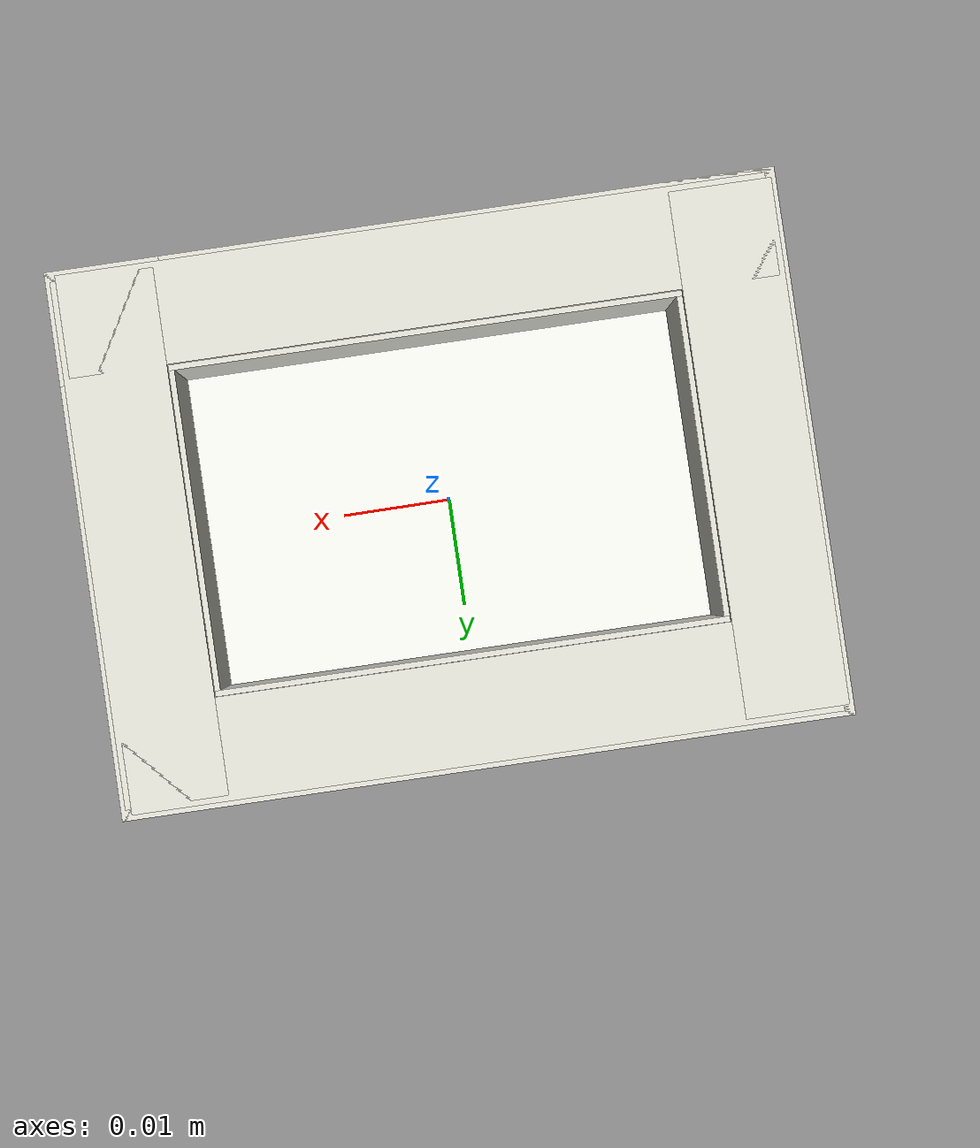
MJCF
<mujoco model="foam_board_small">
  <asset>
    <material name="foam_white" rgba="0.96 0.96 0.93 1" specular="0.05" shininess="0.04" />
    <material name="foam_edge" rgba="0.87 0.87 0.83 1" specular="0.04" shininess="0.03" />
  </asset>
  <worldbody>
    <body>
      <body name="object">
        <geom name="foam_small_collision" type="box" pos="0 0 0.006" size="0.032 0.024 0.006" material="foam_white" group="0" friction="1.0 0.3 0.1" />
        <geom name="foam_small_edge_right_collision" type="box" pos="0.027 0 0.020" size="0.005 0.024 0.007" material="foam_edge" group="0" friction="1.0 0.3 0.1" />
        <geom name="foam_small_edge_left_collision" type="box" pos="-0.027 0 0.020" size="0.005 0.024 0.007" material="foam_edge" group="0" friction="1.0 0.3 0.1" />
        <geom name="foam_small_edge_front_collision" type="box" pos="0 -0.019 0.020" size="0.032 0.005 0.007" material="foam_edge" group="0" friction="1.0 0.3 0.1" />
        <geom name="foam_small_edge_back_collision" type="box" pos="0 0.019 0.020" size="0.032 0.005 0.007" material="foam_edge" group="0" friction="1.0 0.3 0.1" />
        <geom name="foam_small_visual" type="box" pos="0 0 0.007" size="0.031 0.023 0.006" material="foam_white" group="1" contype="0" conaffinity="0" />
        <geom name="foam_small_edge_right_visual" type="box" pos="0.027 0 0.021" size="0.0045 0.023 0.007" material="foam_edge" group="1" contype="0" conaffinity="0" />
        <geom name="foam_small_edge_left_visual" type="box" pos="-0.027 0 0.021" size="0.0045 0.023 0.007" material="foam_edge" group="1" contype="0" conaffinity="0" />
        <geom name="foam_small_edge_front_visual" type="box" pos="0 -0.019 0.021" size="0.031 0.0045 0.007" material="foam_edge" group="1" contype="0" conaffinity="0" />
        <geom name="foam_small_edge_back_visual" type="box" pos="0 0.019 0.021" size="0.031 0.0045 0.007" material="foam_edge" group="1" contype="0" conaffinity="0" />
      </body>
      <site rgba="0 0 0 0" size="0.005" pos="0 0 -0.004" name="bottom_site" />
      <site rgba="0 0 0 0" size="0.005" pos="0 0 0.029" name="top_site" />
      <site rgba="0 0 0 0" size="0.032" pos="0.032 0.032 0" name="horizontal_radius_site" />
    </body>
  </worldbody>
</mujoco>
